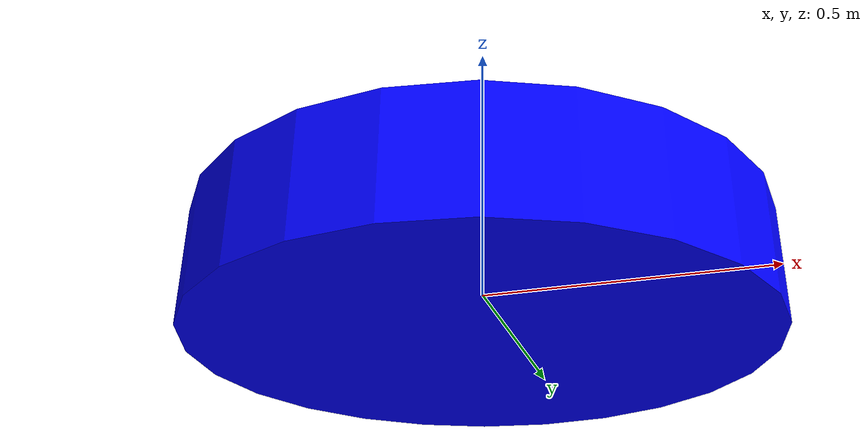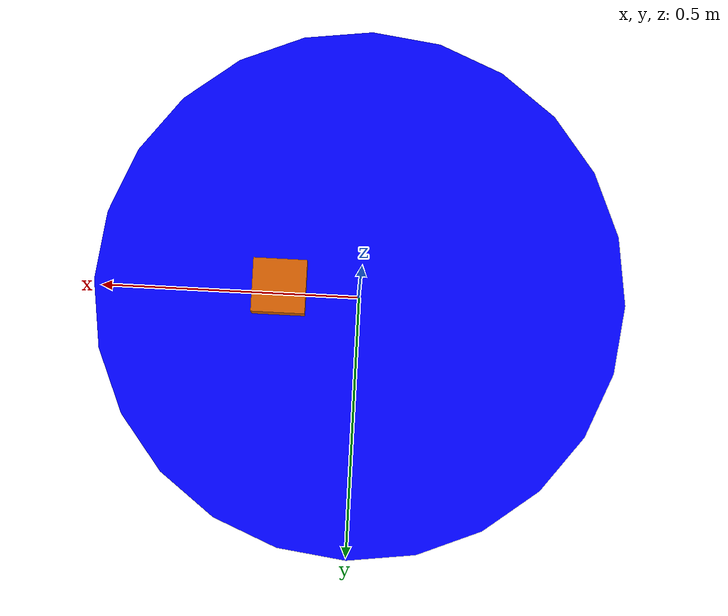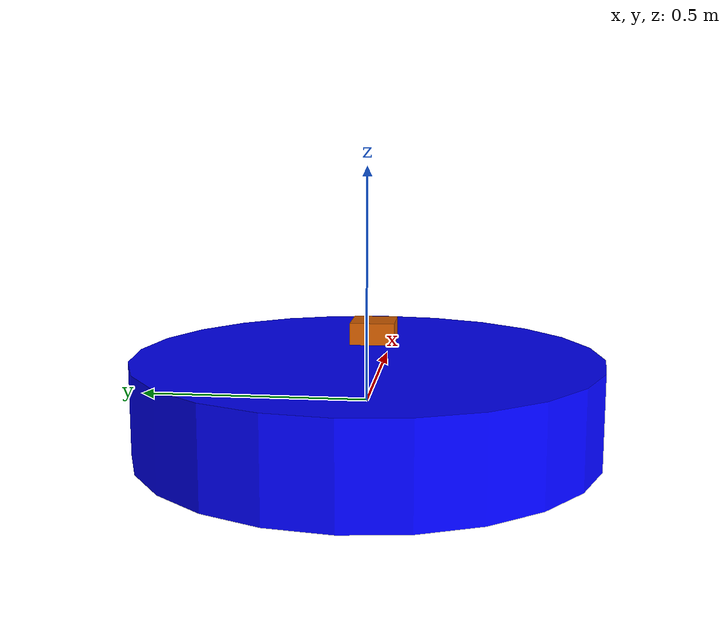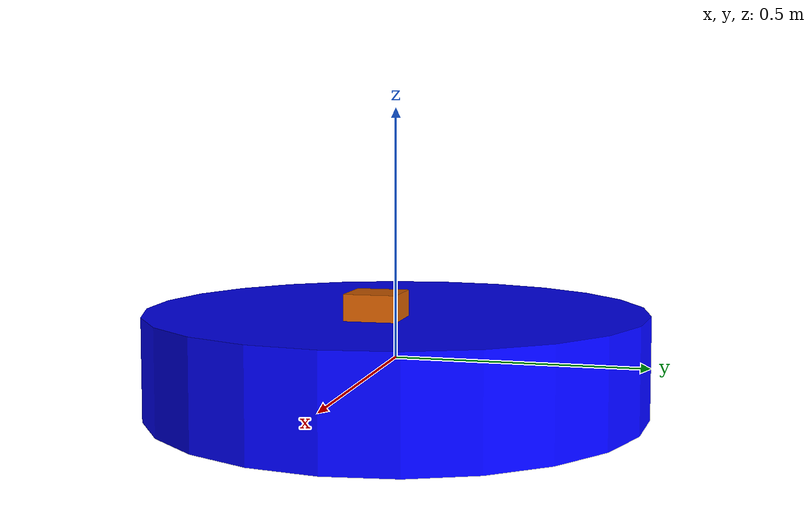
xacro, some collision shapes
<?xml version='1.0'?>

<robot name="udacity_bot" xmlns:xacro="http://www.ros.org/wiki/xacro">
<xacro:include filename="$(find udacity_bot)/urdf/seans_bot.gazebo" />
  <link name="robot_footprint"></link>

  <joint name="robot_footprint_joint" type="fixed">
    <origin xyz="0 0 0" rpy="0 0 0" />
    <parent link="robot_footprint"/>
    <child link="chassis" />
  </joint>

  <link name='chassis'>
    <pose>0 0 0.1 0 0 0</pose>

    <inertial>
      <mass value="15.0"/>
      <origin xyz="0.0 0 0" rpy=" 0 0 0"/>
      <inertia
          ixx="0.1" ixy="0" ixz="0"
          iyy="0.1" iyz="0"
          izz="0.1"
      />
    </inertial>

    <collision name='collision'>
      <origin xyz="0 0 0" rpy=" 0 0 0"/>
      <geometry>
        <cylinder radius ="0.5" length ="0.2"/>
      </geometry>
    </collision>

    <visual name='chassis_visual'>
      <origin xyz="0 0 0" rpy=" 0 0 0"/>
      <geometry>
        <cylinder radius = "0.5" length ="0.2"/>
      </geometry>
      <material name= "red">
        <color rbda = "1 0 0 0"/>
      </material>
    </visual>

    <collision name='back_caster_collision'>
      <origin xyz="-0.15 0 -0.05" rpy=" 0 0 0"/>
      <geometry>
        <sphere radius="0.0499"/>
      </geometry>
    </collision>

    <visual name='back_caster_visual'>
      <origin xyz="-0.15 0 -0.05" rpy=" 0 0 0"/>
      <geometry>
        <sphere radius="0.05"/>
      </geometry>
    </visual>

    <collision name='front_caster_collision'>
      <origin xyz="0.15 0 -0.05" rpy=" 0 0 0"/>
      <geometry>
        <sphere radius="0.0499"/>
      </geometry>
    </collision>

    <visual name='front_caster_visual'>
      <origin xyz="0.15 0 -0.05" rpy=" 0 0 0"/>
      <geometry>
        <sphere radius="0.05"/>
      </geometry>
    </visual>

  </link>

<link name = 'left_wheel'>

  <inertial>
      <mass value="5.0"/>
      <origin xyz="0 0 0" rpy=" 0 1.57 1.57"/>
      <inertia
          ixx="0.1" ixy="0" ixz="0"
          iyy="0.1" iyz="0"
          izz="0.1"
      />
   </inertial>
   <visual>
     <geometry>
      <cylinder radius="0.1" length = "0.05"/>
     </geometry>
    <origin xyz = "0 0 0" rpy =" 0 1.5707 1.5707"/>
    <material name = "black">
      <color rgba = "1 0 1 0"/>
    </material>
   </visual>
   <collision>
     <geometry>
       <cylinder length = "0.05" radius = "0.1"/>
     </geometry>
     <origin xyz = "0 0 0" rpy = "0 1.5707 1.5707"/>
   </collision>
</link>

<link name = 'right_wheel'>

  <inertial>
      <mass value="5.0"/>
      <origin xyz="0 0 0" rpy=" 0 1.57 1.57"/>
      <inertia
          ixx="0.1" ixy="0" ixz="0"
          iyy="0.1" iyz="0"
          izz="0.1"
      />
   </inertial>
   <visual>
     <geometry>
      <cylinder radius="0.1" length = "0.05"/>
     </geometry>
    <origin xyz = "0 0 0" rpy =" 0 1.5707 1.5707"/>
    <material name = "black">
      <color rgba = "1 0 1 0"/>
    </material>
   </visual>
   <collision>
     <geometry>
       <cylinder length = "0.05" radius = "0.1"/>
     </geometry>
     <origin xyz = "0 0 0" rpy = "0 1.5707 1.5707"/>
   </collision>
</link>

<!-- Camera Link -->

  <link name="camera">

    <inertial>
      <mass value="0.1"/>
      <origin xyz="0 0 0" rpy="0 0 0"/>
      <inertia
          ixx="1e-6" ixy="0" ixz="0"
          iyy="1e-6" iyz="0"
          izz="1e-6"
      />
    </inertial>
    <visual>
      <geometry>
        <box size="0.05 0.05 0.05"/>
      </geometry>
      <origin xyz="0 0 0" rpy="0 0 0"/>
      <material name="red">
        <color rgba="0 0 1 1"/>
      </material>
    </visual>
    <collision>
      <geometry>
        <box size="0.05 0.05 0.05"/>
      </geometry>
      <origin xyz="0 0 0" rpy="0 0 0"/>
    </collision>
  </link>

<!-- Hokuyo Link -->

  <link name="hokuyo">

    <inertial>
      <mass value="0.1"/>
      <origin xyz="0 0 0" rpy="0 0 0"/>
      <inertia
          ixx="1e-6" ixy="0" ixz="0"
          iyy="1e-6" iyz="0"
          izz="1e-6"
      />
    </inertial>
    <visual>
      <geometry>
        <mesh filename="package://udacity_bot/meshes/hokuyo.dae"/>
      </geometry>
      <origin xyz="0 0 0" rpy="0 0 0"/>
    </visual>
    <collision>
      <geometry>
        <box size="0.1 0.1 0.1"/>
      </geometry>
      <origin xyz="0 0 0" rpy="0 0 0"/>
    </collision>
  </link>

<!--joints -->

<joint type="continuous" name="left_wheel_hinge">
    <origin xyz="0 0.15 0" rpy="0 0 0"/>
    <child link="left_wheel"/>
    <parent link="chassis"/>
    <axis xyz="0 1 0" rpy="0 0 0"/>
    <limit effort="10000" velocity="1000"/>
    <dynamics damping="1.0" friction="1.0"/>
</joint>

<joint type="continuous" name="right_wheel_hinge">
    <origin xyz="0 -0.15 0" rpy="0 0 0"/>
    <child link="right_wheel"/>
    <parent link="chassis"/>
    <axis xyz="0 1 0" rpy="0 0 0"/>
    <limit effort="10000" velocity="1000"/>
    <dynamics damping="1.0" friction="1.0"/>
</joint>

<joint type="fixed" name="camera_joint">
    <origin xyz="0.2 0 0" rpy="0 0 0"/>
    <child link="camera"/>
    <parent link="chassis"/>
  </joint>

<joint type="fixed" name="hokuyo_joint">
    <origin xyz="0.15 0 0.1" rpy="0 0 0"/>
    <child link="hokuyo"/>
    <parent link="chassis"/>
  </joint>

</robot>
